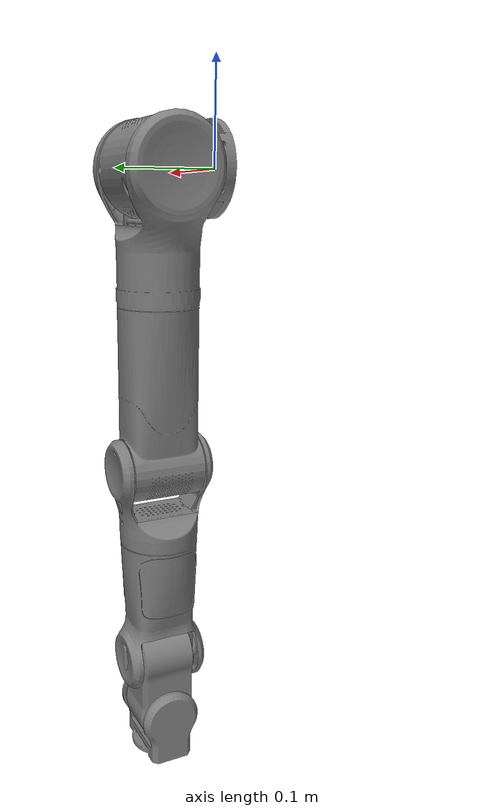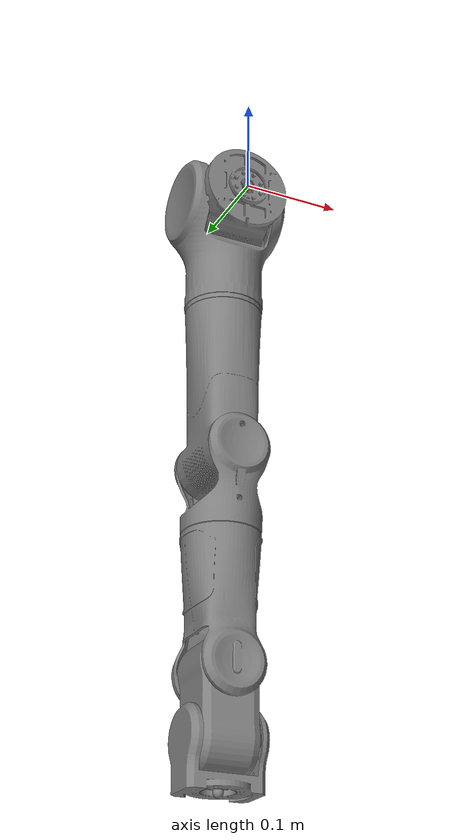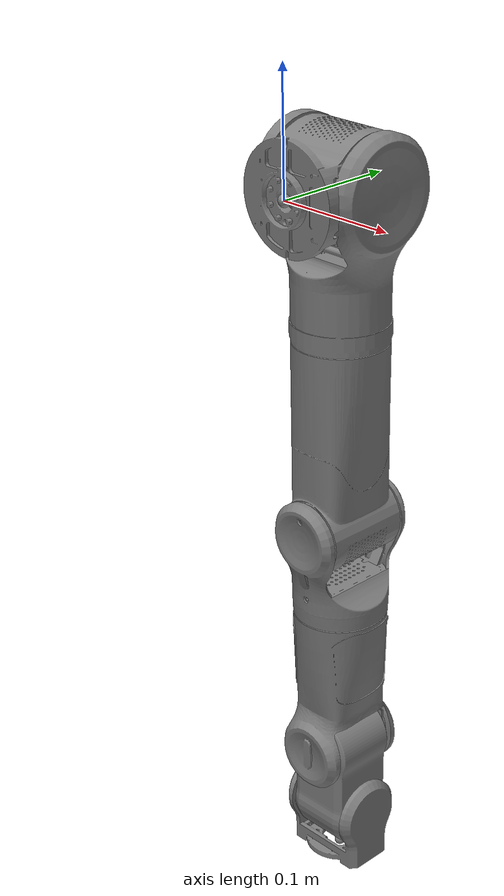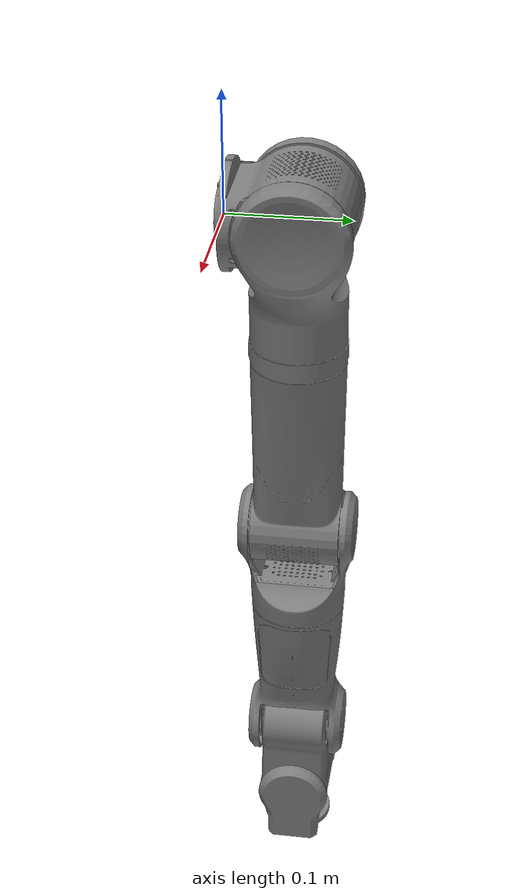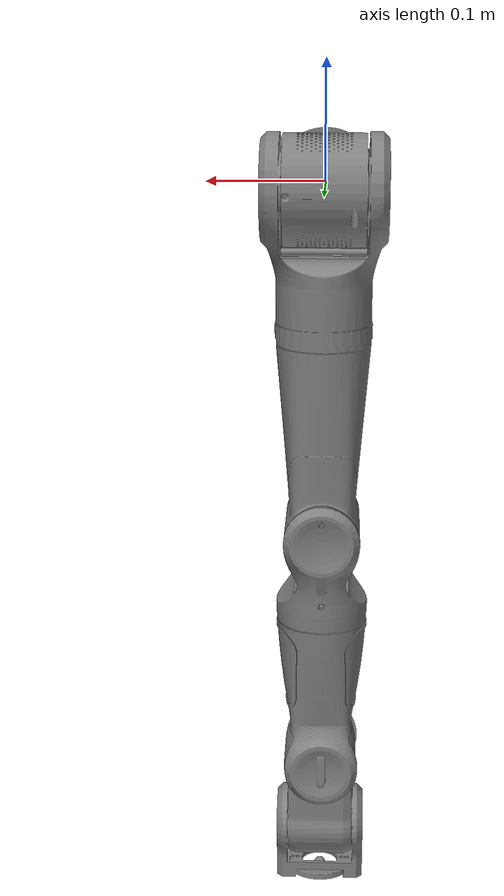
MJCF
<mujoco model="lkls73_arm_left">
  <compiler meshdir="meshes" discardvisual="false" autolimits="true" angle="radian" eulerseq="XYZ"/>
  <option/>

  <default>
    <default class="arm_lkls73_arm_visual">
      <geom type="mesh" contype="0" conaffinity="0" group="1"/>
    </default>
    <default class="arm_lkls73_arm_collision">
      <geom type="mesh" contype="1" conaffinity="1" group="3"/>
    </default>
  </default>

  <asset>
    <mesh name="L1" file="L1_Link.STL"/>
    <mesh name="L2" file="L2_Link.STL"/>
    <mesh name="L3" file="L3_Link.STL"/>
    <mesh name="L4" file="L4_Link.STL"/>
    <mesh name="L5" file="L5_Link.STL"/>
    <mesh name="L6" file="L6_Link.STL"/>
    <mesh name="L7" file="L7_Link.STL"/>
    <mesh name="L8" file="L8_Link.STL"/>
  </asset>

  <worldbody>
    <body name="L_arm_root" pos="0 0 0">
      <site name="base_mount" pos="0 0 0"/>

      <body name="L1_Link" pos="0 0 0">
        <inertial pos="0.00235600060651345 0.0538143182293528 0.00010452198160641"
                  mass="1.3997199601261"
                  fullinertia="0.00114445383866051 0.000654874787984474 0.000691494366096022 -2.33503672142218E-06 -9.94413789148138E-09 1.05907637546798E-06"/>
        <joint name="L1_Joint" type="hinge" axis="0 -1 0"
               range="-2.91 2.91" damping="20" frictionloss="0.0" armature="0.01"/>
        <geom class="arm_lkls73_arm_visual" mesh="L1"/>
        <geom class="arm_lkls73_arm_collision" mesh="L1"/>

        <body name="L2_Link" pos="0 0.058 0">
          <inertial pos="0.001618419731441 8.17586538826021E-06 -0.0795739675465699"
                    mass="1.14210487960353"
                    fullinertia="0.000999259952314694 0.000929597687983869 0.000490873838603504 4.38390447469883E-06 -1.34113970553355E-06 2.7922699166407E-07"/>
          <joint name="L2_Joint" type="hinge" axis="-1 0 0"
                 range="-3.2 0.07" damping="20" frictionloss="0.0" armature="0.01"/>
          <geom class="arm_lkls73_arm_visual" mesh="L2"/>
          <geom class="arm_lkls73_arm_collision" mesh="L2"/>

          <body name="L3_Link" pos="-2.5018E-05 0 -0.123">
            <inertial pos="0.000181280975708543 0.0012493056236523 -0.128548942292033"
                      mass="1.2798435287888"
                      fullinertia="0.00158095142201815 0.00163152743924312 0.000344148864762278 7.74063763820645E-07 -8.68119829913453E-07 -2.41539579836192E-06"/>
            <joint name="L3_Joint" type="hinge" axis="0 0 1"
                   range="-2.69 2.69" damping="20" frictionloss="0.0" armature="0.01"/>
            <geom class="arm_lkls73_arm_visual" mesh="L3"/>
            <geom class="arm_lkls73_arm_collision" mesh="L3"/>

            <body name="L4_Link" pos="2.4267E-05 0 -0.1621">
              <inertial pos="-3.38229166406629E-06 0.00077842370454409 -0.08460011635447"
                        mass="0.935504485205333"
                        fullinertia="0.000508246005403967 0.000524130562919452 0.000333983371716017 -4.123494432482E-06 -1.601236457745E-07 -3.45757221458974E-07"/>
              <joint name="L4_Joint" type="hinge" axis="0 -1 0"
                     range="-2.05 2.05" damping="20" frictionloss="0.0" armature="0.01"/>
              <geom class="arm_lkls73_arm_visual" mesh="L4"/>
              <geom class="arm_lkls73_arm_collision" mesh="L4"/>

              <body name="L5_Link" pos="0 0 -0.124">
                <inertial pos="-7.8967109106414E-05 0.00127705818106172 -0.0361222642165061"
                          mass="0.298012293033296"
                          fullinertia="0.000356324975203863 0.000385006059216245 0.000101746640600842 8.49346343481351E-07 -1.06208641170066E-06 2.16302454958746E-06"/>
                <joint name="L5_Joint" type="hinge" axis="0 0 1"
                       range="-2.69 2.69" damping="20" frictionloss="0.0" armature="0.01"/>
                <geom class="arm_lkls73_arm_visual" mesh="L5"/>
                <geom class="arm_lkls73_arm_collision" mesh="L5"/>

                <body name="L6_Link" pos="0 0 -0.0881">
                  <inertial pos="0.00423270788750624 -0.00438646585481159 -0.0324823655341541"
                            mass="0.344326210144814"
                            fullinertia="0.000194396852170226 0.000233882186601331 0.000101458599044909 1.34053122918212E-06 9.47054882668167E-06 2.86885239016126E-07"/>
                  <joint name="L6_Joint" type="hinge" axis="0 -1 0"
                         range="-1.59 1.59" damping="20" frictionloss="0.0" armature="0.01"/>
                  <geom class="arm_lkls73_arm_visual" mesh="L6"/>
                  <geom class="arm_lkls73_arm_collision" mesh="L6"/>

                  <body name="L7_Link" pos="-2.6563E-05 0 -0.0655">
                    <inertial pos="-0.00330667550396703 2.7195733834362E-07 -0.0202430179985484"
                              mass="0.143310943627726"
                              fullinertia="6.98168229201036E-05 5.48675476764208E-05 4.4020607930097E-05 2.70503363331007E-07 -3.17975733412514E-08 1.01362000675163E-12"/>
                    <joint name="L7_Joint" type="hinge" axis="-1 0 0"
                           range="-1.59 1.59" damping="20" frictionloss="0.0" armature="0.01"/>
                    <geom class="arm_lkls73_arm_visual" mesh="L7"/>
                    <geom class="arm_lkls73_arm_collision" mesh="L7"/>

                    <body name="L8_Link" pos="2.5732E-05 0 -0.0455">
                      <inertial pos="1.08546552465473E-10 -1.13853898531247E-09 0.000500000000024592"
                                mass="6.05149284897746E-05"
                                fullinertia="8.49604381443617E-09 8.49604381442905E-09 1.69820018074357E-08 8.31968496153617E-22 -7.81277944440306E-15 -9.03653480952828E-16"/>
                      <geom class="arm_lkls73_arm_visual" mesh="L8"/>
                      <geom class="arm_lkls73_arm_collision" mesh="L8"/>
                      <site name="tool0" pos="0 0 0"/>
                    </body>
                  </body>
                </body>
              </body>
            </body>
          </body>
        </body>
      </body>
    </body>
  </worldbody>

  <actuator>
    <position name="L1_Joint_act" joint="L1_Joint" kp="2000" kv="0" ctrlrange="-2.91 2.91"/>
    <position name="L2_Joint_act" joint="L2_Joint" kp="2000" kv="0" ctrlrange="-3.2 0.07"/>
    <position name="L3_Joint_act" joint="L3_Joint" kp="2000" kv="0" ctrlrange="-2.69 2.69"/>
    <position name="L4_Joint_act" joint="L4_Joint" kp="2000" kv="0" ctrlrange="-2.05 2.05"/>
    <position name="L5_Joint_act" joint="L5_Joint" kp="2000" kv="0" ctrlrange="-2.69 2.69"/>
    <position name="L6_Joint_act" joint="L6_Joint" kp="2000" kv="0" ctrlrange="-1.59 1.59"/>
    <position name="L7_Joint_act" joint="L7_Joint" kp="2000" kv="0" ctrlrange="-1.59 1.59"/>
  </actuator>

  <contact>
    <exclude body1="L1_Link" body2="L2_Link"/>
    <exclude body1="L2_Link" body2="L3_Link"/>
    <exclude body1="L3_Link" body2="L4_Link"/>
    <exclude body1="L4_Link" body2="L5_Link"/>
    <exclude body1="L5_Link" body2="L6_Link"/>
    <exclude body1="L6_Link" body2="L7_Link"/>
    <exclude body1="L7_Link" body2="L8_Link"/>
  </contact>
</mujoco>
